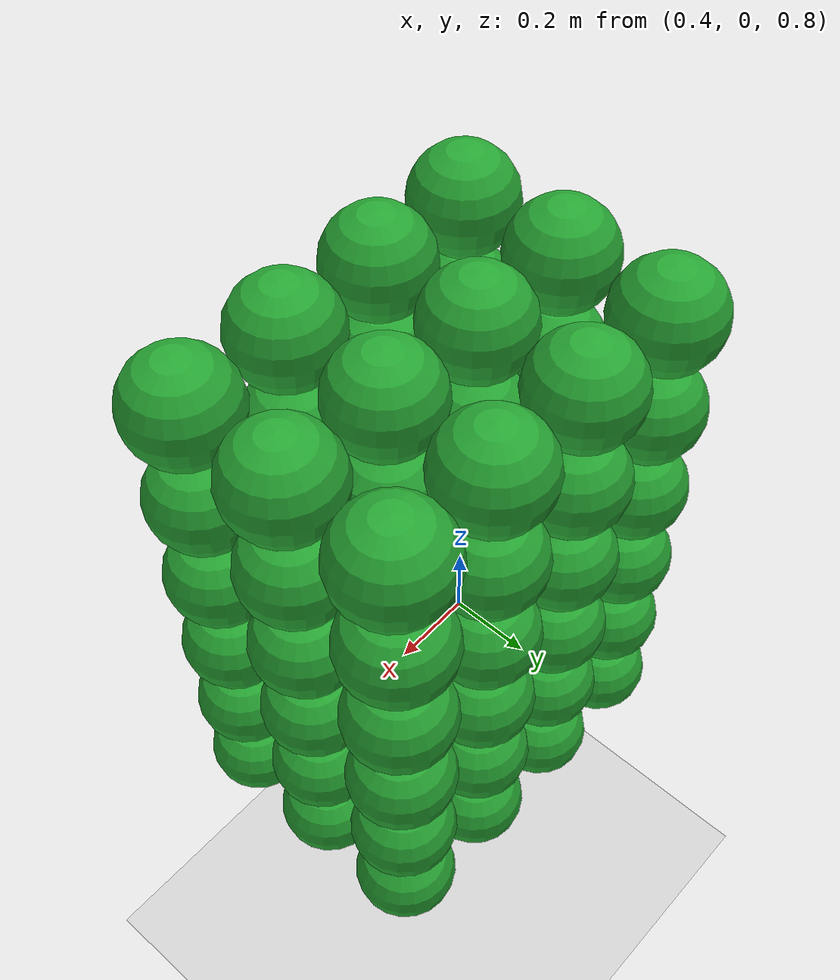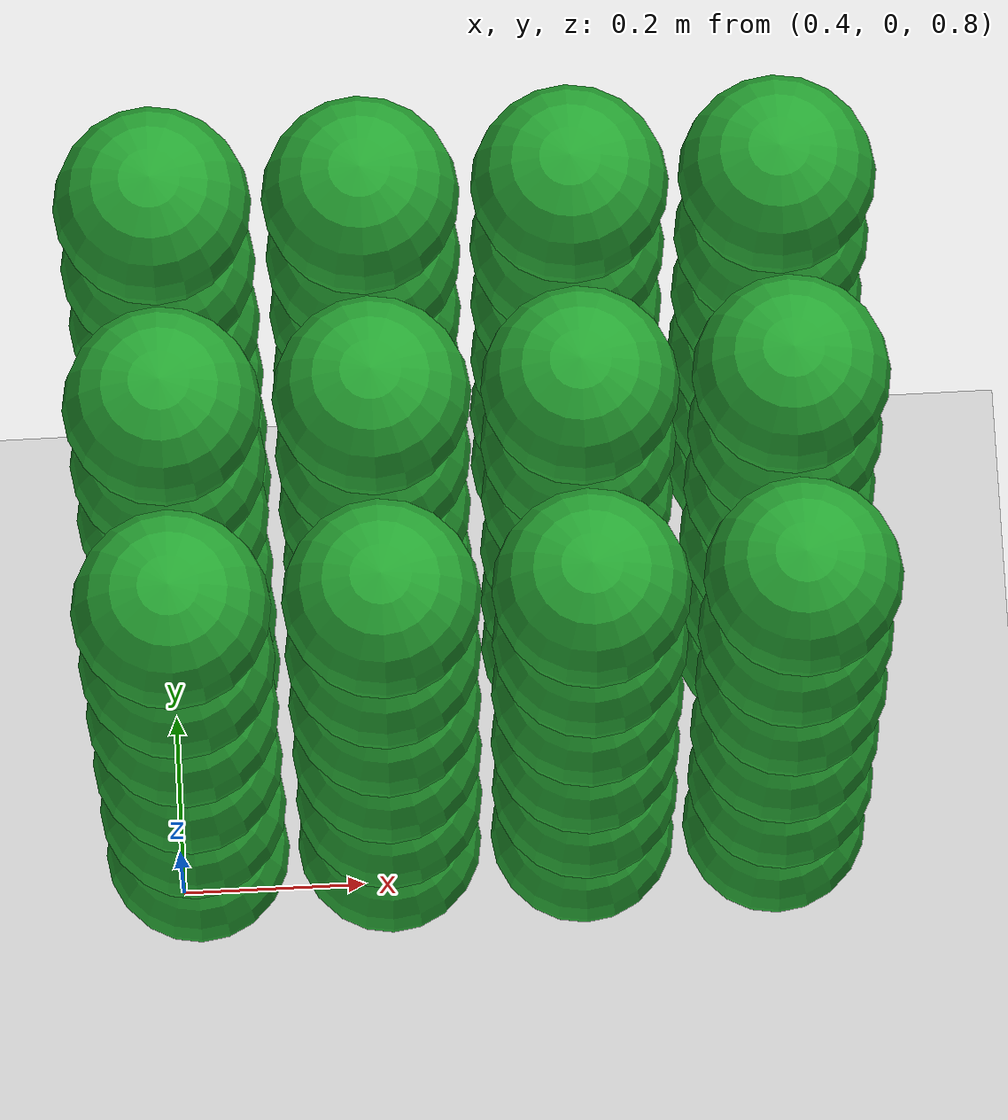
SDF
<sdf version="1.7">
 <world name="default">
  <model name="ground_plane">
   <static>1</static>
   <link name="link">
    <collision name="collision">
     <geometry><plane><normal>0 0 1</normal><size>100 100</size></plane></geometry>
     <surface>
      <contact><collide_bitmask>65535</collide_bitmask></contact>
      <friction><ode><mu>100</mu><mu2>50</mu2></ode></friction>
     </surface>
    </collision>
    <visual name="visual">
     <cast_shadows>0</cast_shadows>
     <geometry><plane><normal>0 0 1</normal><size>100 100</size></plane></geometry>
     <material>
      <script><uri>file://media/materials/scripts/gazebo.material</uri><name>Gazebo/Grey</name></script>
     </material>
    </visual>
   </link>
  </model>
  <model name="ball_72">
   <pose>0.419984 0.000000 1.000000 0 0 0</pose>
   <link name="link">
    <inertial><mass>10.000000</mass></inertial>
    <collision name="collision">
     <geometry><sphere><radius>0.100000</radius></sphere></geometry>
     <surface><friction><ode><mu>0</mu><mu2>0</mu2></ode></friction></surface>
    </collision>
    <visual name="visual">
     <geometry><sphere><radius>0.100000</radius></sphere></geometry>
     <material>
      <script><name>Gazebo/Green</name><uri>file://media/materials/scripts/gazebo.material</uri></script>
     </material>
    </visual>
   </link>
  </model>
  <model name="ball_73">
   <pose>0.420039 0.000000 1.210019 0 0 0</pose>
   <link name="link">
    <inertial><mass>10.000000</mass></inertial>
    <collision name="collision">
     <geometry><sphere><radius>0.100000</radius></sphere></geometry>
     <surface><friction><ode><mu>0</mu><mu2>0</mu2></ode></friction></surface>
    </collision>
    <visual name="visual">
     <geometry><sphere><radius>0.100000</radius></sphere></geometry>
     <material>
      <script><name>Gazebo/Green</name><uri>file://media/materials/scripts/gazebo.material</uri></script>
     </material>
    </visual>
   </link>
  </model>
  <model name="ball_74">
   <pose>0.419888 0.000000 1.419888 0 0 0</pose>
   <link name="link">
    <inertial><mass>10.000000</mass></inertial>
    <collision name="collision">
     <geometry><sphere><radius>0.100000</radius></sphere></geometry>
     <surface><friction><ode><mu>0</mu><mu2>0</mu2></ode></friction></surface>
    </collision>
    <visual name="visual">
     <geometry><sphere><radius>0.100000</radius></sphere></geometry>
     <material>
      <script><name>Gazebo/Green</name><uri>file://media/materials/scripts/gazebo.material</uri></script>
     </material>
    </visual>
   </link>
  </model>
  <model name="ball_75">
   <pose>0.420021 0.000000 1.630032 0 0 0</pose>
   <link name="link">
    <inertial><mass>10.000000</mass></inertial>
    <collision name="collision">
     <geometry><sphere><radius>0.100000</radius></sphere></geometry>
     <surface><friction><ode><mu>0</mu><mu2>0</mu2></ode></friction></surface>
    </collision>
    <visual name="visual">
     <geometry><sphere><radius>0.100000</radius></sphere></geometry>
     <material>
      <script><name>Gazebo/Green</name><uri>file://media/materials/scripts/gazebo.material</uri></script>
     </material>
    </visual>
   </link>
  </model>
  <model name="ball_76">
   <pose>0.419873 0.000000 1.839746 0 0 0</pose>
   <link name="link">
    <inertial><mass>10.000000</mass></inertial>
    <collision name="collision">
     <geometry><sphere><radius>0.100000</radius></sphere></geometry>
     <surface><friction><ode><mu>0</mu><mu2>0</mu2></ode></friction></surface>
    </collision>
    <visual name="visual">
     <geometry><sphere><radius>0.100000</radius></sphere></geometry>
     <material>
      <script><name>Gazebo/Green</name><uri>file://media/materials/scripts/gazebo.material</uri></script>
     </material>
    </visual>
   </link>
  </model>
  <model name="ball_77">
   <pose>0.419648 0.000000 2.049121 0 0 0</pose>
   <link name="link">
    <inertial><mass>10.000000</mass></inertial>
    <collision name="collision">
     <geometry><sphere><radius>0.100000</radius></sphere></geometry>
     <surface><friction><ode><mu>0</mu><mu2>0</mu2></ode></friction></surface>
    </collision>
    <visual name="visual">
     <geometry><sphere><radius>0.100000</radius></sphere></geometry>
     <material>
      <script><name>Gazebo/Green</name><uri>file://media/materials/scripts/gazebo.material</uri></script>
     </material>
    </visual>
   </link>
  </model>
  <model name="ball_78">
   <pose>0.419767 0.209884 1.000000 0 0 0</pose>
   <link name="link">
    <inertial><mass>10.000000</mass></inertial>
    <collision name="collision">
     <geometry><sphere><radius>0.100000</radius></sphere></geometry>
     <surface><friction><ode><mu>0</mu><mu2>0</mu2></ode></friction></surface>
    </collision>
    <visual name="visual">
     <geometry><sphere><radius>0.100000</radius></sphere></geometry>
     <material>
      <script><name>Gazebo/Green</name><uri>file://media/materials/scripts/gazebo.material</uri></script>
     </material>
    </visual>
   </link>
  </model>
  <model name="ball_79">
   <pose>0.419958 0.209979 1.209979 0 0 0</pose>
   <link name="link">
    <inertial><mass>10.000000</mass></inertial>
    <collision name="collision">
     <geometry><sphere><radius>0.100000</radius></sphere></geometry>
     <surface><friction><ode><mu>0</mu><mu2>0</mu2></ode></friction></surface>
    </collision>
    <visual name="visual">
     <geometry><sphere><radius>0.100000</radius></sphere></geometry>
     <material>
      <script><name>Gazebo/Green</name><uri>file://media/materials/scripts/gazebo.material</uri></script>
     </material>
    </visual>
   </link>
  </model>
  <model name="ball_80">
   <pose>0.420184 0.210092 1.420184 0 0 0</pose>
   <link name="link">
    <inertial><mass>10.000000</mass></inertial>
    <collision name="collision">
     <geometry><sphere><radius>0.100000</radius></sphere></geometry>
     <surface><friction><ode><mu>0</mu><mu2>0</mu2></ode></friction></surface>
    </collision>
    <visual name="visual">
     <geometry><sphere><radius>0.100000</radius></sphere></geometry>
     <material>
      <script><name>Gazebo/Green</name><uri>file://media/materials/scripts/gazebo.material</uri></script>
     </material>
    </visual>
   </link>
  </model>
  <model name="ball_81">
   <pose>0.419599 0.209799 1.629398 0 0 0</pose>
   <link name="link">
    <inertial><mass>10.000000</mass></inertial>
    <collision name="collision">
     <geometry><sphere><radius>0.100000</radius></sphere></geometry>
     <surface><friction><ode><mu>0</mu><mu2>0</mu2></ode></friction></surface>
    </collision>
    <visual name="visual">
     <geometry><sphere><radius>0.100000</radius></sphere></geometry>
     <material>
      <script><name>Gazebo/Green</name><uri>file://media/materials/scripts/gazebo.material</uri></script>
     </material>
    </visual>
   </link>
  </model>
  <model name="ball_82">
   <pose>0.420200 0.210100 1.840401 0 0 0</pose>
   <link name="link">
    <inertial><mass>10.000000</mass></inertial>
    <collision name="collision">
     <geometry><sphere><radius>0.100000</radius></sphere></geometry>
     <surface><friction><ode><mu>0</mu><mu2>0</mu2></ode></friction></surface>
    </collision>
    <visual name="visual">
     <geometry><sphere><radius>0.100000</radius></sphere></geometry>
     <material>
      <script><name>Gazebo/Green</name><uri>file://media/materials/scripts/gazebo.material</uri></script>
     </material>
    </visual>
   </link>
  </model>
  <model name="ball_83">
   <pose>0.420075 0.210037 2.050187 0 0 0</pose>
   <link name="link">
    <inertial><mass>10.000000</mass></inertial>
    <collision name="collision">
     <geometry><sphere><radius>0.100000</radius></sphere></geometry>
     <surface><friction><ode><mu>0</mu><mu2>0</mu2></ode></friction></surface>
    </collision>
    <visual name="visual">
     <geometry><sphere><radius>0.100000</radius></sphere></geometry>
     <material>
      <script><name>Gazebo/Green</name><uri>file://media/materials/scripts/gazebo.material</uri></script>
     </material>
    </visual>
   </link>
  </model>
  <model name="ball_84">
   <pose>0.419770 0.419770 1.000000 0 0 0</pose>
   <link name="link">
    <inertial><mass>10.000000</mass></inertial>
    <collision name="collision">
     <geometry><sphere><radius>0.100000</radius></sphere></geometry>
     <surface><friction><ode><mu>0</mu><mu2>0</mu2></ode></friction></surface>
    </collision>
    <visual name="visual">
     <geometry><sphere><radius>0.100000</radius></sphere></geometry>
     <material>
      <script><name>Gazebo/Green</name><uri>file://media/materials/scripts/gazebo.material</uri></script>
     </material>
    </visual>
   </link>
  </model>
  <model name="ball_85">
   <pose>0.419704 0.419704 1.209852 0 0 0</pose>
   <link name="link">
    <inertial><mass>10.000000</mass></inertial>
    <collision name="collision">
     <geometry><sphere><radius>0.100000</radius></sphere></geometry>
     <surface><friction><ode><mu>0</mu><mu2>0</mu2></ode></friction></surface>
    </collision>
    <visual name="visual">
     <geometry><sphere><radius>0.100000</radius></sphere></geometry>
     <material>
      <script><name>Gazebo/Green</name><uri>file://media/materials/scripts/gazebo.material</uri></script>
     </material>
    </visual>
   </link>
  </model>
  <model name="ball_86">
   <pose>0.419795 0.419795 1.419795 0 0 0</pose>
   <link name="link">
    <inertial><mass>10.000000</mass></inertial>
    <collision name="collision">
     <geometry><sphere><radius>0.100000</radius></sphere></geometry>
     <surface><friction><ode><mu>0</mu><mu2>0</mu2></ode></friction></surface>
    </collision>
    <visual name="visual">
     <geometry><sphere><radius>0.100000</radius></sphere></geometry>
     <material>
      <script><name>Gazebo/Green</name><uri>file://media/materials/scripts/gazebo.material</uri></script>
     </material>
    </visual>
   </link>
  </model>
  <model name="ball_87">
   <pose>0.420315 0.420315 1.630472 0 0 0</pose>
   <link name="link">
    <inertial><mass>10.000000</mass></inertial>
    <collision name="collision">
     <geometry><sphere><radius>0.100000</radius></sphere></geometry>
     <surface><friction><ode><mu>0</mu><mu2>0</mu2></ode></friction></surface>
    </collision>
    <visual name="visual">
     <geometry><sphere><radius>0.100000</radius></sphere></geometry>
     <material>
      <script><name>Gazebo/Green</name><uri>file://media/materials/scripts/gazebo.material</uri></script>
     </material>
    </visual>
   </link>
  </model>
  <model name="ball_88">
   <pose>0.419756 0.419756 1.839512 0 0 0</pose>
   <link name="link">
    <inertial><mass>10.000000</mass></inertial>
    <collision name="collision">
     <geometry><sphere><radius>0.100000</radius></sphere></geometry>
     <surface><friction><ode><mu>0</mu><mu2>0</mu2></ode></friction></surface>
    </collision>
    <visual name="visual">
     <geometry><sphere><radius>0.100000</radius></sphere></geometry>
     <material>
      <script><name>Gazebo/Green</name><uri>file://media/materials/scripts/gazebo.material</uri></script>
     </material>
    </visual>
   </link>
  </model>
  <model name="ball_89">
   <pose>0.419690 0.419690 2.049226 0 0 0</pose>
   <link name="link">
    <inertial><mass>10.000000</mass></inertial>
    <collision name="collision">
     <geometry><sphere><radius>0.100000</radius></sphere></geometry>
     <surface><friction><ode><mu>0</mu><mu2>0</mu2></ode></friction></surface>
    </collision>
    <visual name="visual">
     <geometry><sphere><radius>0.100000</radius></sphere></geometry>
     <material>
      <script><name>Gazebo/Green</name><uri>file://media/materials/scripts/gazebo.material</uri></script>
     </material>
    </visual>
   </link>
  </model>
  <model name="ball_108">
   <pose>0.629375 0.000000 1.000000 0 0 0</pose>
   <link name="link">
    <inertial><mass>10.000000</mass></inertial>
    <collision name="collision">
     <geometry><sphere><radius>0.100000</radius></sphere></geometry>
     <surface><friction><ode><mu>0</mu><mu2>0</mu2></ode></friction></surface>
    </collision>
    <visual name="visual">
     <geometry><sphere><radius>0.100000</radius></sphere></geometry>
     <material>
      <script><name>Gazebo/Green</name><uri>file://media/materials/scripts/gazebo.material</uri></script>
     </material>
    </visual>
   </link>
  </model>
  <model name="ball_109">
   <pose>0.630531 0.000000 1.210177 0 0 0</pose>
   <link name="link">
    <inertial><mass>10.000000</mass></inertial>
    <collision name="collision">
     <geometry><sphere><radius>0.100000</radius></sphere></geometry>
     <surface><friction><ode><mu>0</mu><mu2>0</mu2></ode></friction></surface>
    </collision>
    <visual name="visual">
     <geometry><sphere><radius>0.100000</radius></sphere></geometry>
     <material>
      <script><name>Gazebo/Green</name><uri>file://media/materials/scripts/gazebo.material</uri></script>
     </material>
    </visual>
   </link>
  </model>
  <model name="ball_110">
   <pose>0.630033 0.000000 1.420022 0 0 0</pose>
   <link name="link">
    <inertial><mass>10.000000</mass></inertial>
    <collision name="collision">
     <geometry><sphere><radius>0.100000</radius></sphere></geometry>
     <surface><friction><ode><mu>0</mu><mu2>0</mu2></ode></friction></surface>
    </collision>
    <visual name="visual">
     <geometry><sphere><radius>0.100000</radius></sphere></geometry>
     <material>
      <script><name>Gazebo/Green</name><uri>file://media/materials/scripts/gazebo.material</uri></script>
     </material>
    </visual>
   </link>
  </model>
  <model name="ball_111">
   <pose>0.629526 0.000000 1.629526 0 0 0</pose>
   <link name="link">
    <inertial><mass>10.000000</mass></inertial>
    <collision name="collision">
     <geometry><sphere><radius>0.100000</radius></sphere></geometry>
     <surface><friction><ode><mu>0</mu><mu2>0</mu2></ode></friction></surface>
    </collision>
    <visual name="visual">
     <geometry><sphere><radius>0.100000</radius></sphere></geometry>
     <material>
      <script><name>Gazebo/Green</name><uri>file://media/materials/scripts/gazebo.material</uri></script>
     </material>
    </visual>
   </link>
  </model>
  <model name="ball_112">
   <pose>0.629442 0.000000 1.839256 0 0 0</pose>
   <link name="link">
    <inertial><mass>10.000000</mass></inertial>
    <collision name="collision">
     <geometry><sphere><radius>0.100000</radius></sphere></geometry>
     <surface><friction><ode><mu>0</mu><mu2>0</mu2></ode></friction></surface>
    </collision>
    <visual name="visual">
     <geometry><sphere><radius>0.100000</radius></sphere></geometry>
     <material>
      <script><name>Gazebo/Green</name><uri>file://media/materials/scripts/gazebo.material</uri></script>
     </material>
    </visual>
   </link>
  </model>
  <model name="ball_113">
   <pose>0.629796 0.000000 2.049660 0 0 0</pose>
   <link name="link">
    <inertial><mass>10.000000</mass></inertial>
    <collision name="collision">
     <geometry><sphere><radius>0.100000</radius></sphere></geometry>
     <surface><friction><ode><mu>0</mu><mu2>0</mu2></ode></friction></surface>
    </collision>
    <visual name="visual">
     <geometry><sphere><radius>0.100000</radius></sphere></geometry>
     <material>
      <script><name>Gazebo/Green</name><uri>file://media/materials/scripts/gazebo.material</uri></script>
     </material>
    </visual>
   </link>
  </model>
  <model name="ball_114">
   <pose>0.630516 0.210172 1.000000 0 0 0</pose>
   <link name="link">
    <inertial><mass>10.000000</mass></inertial>
    <collision name="collision">
     <geometry><sphere><radius>0.100000</radius></sphere></geometry>
     <surface><friction><ode><mu>0</mu><mu2>0</mu2></ode></friction></surface>
    </collision>
    <visual name="visual">
     <geometry><sphere><radius>0.100000</radius></sphere></geometry>
     <material>
      <script><name>Gazebo/Green</name><uri>file://media/materials/scripts/gazebo.material</uri></script>
     </material>
    </visual>
   </link>
  </model>
  <model name="ball_115">
   <pose>0.630187 0.210062 1.210062 0 0 0</pose>
   <link name="link">
    <inertial><mass>10.000000</mass></inertial>
    <collision name="collision">
     <geometry><sphere><radius>0.100000</radius></sphere></geometry>
     <surface><friction><ode><mu>0</mu><mu2>0</mu2></ode></friction></surface>
    </collision>
    <visual name="visual">
     <geometry><sphere><radius>0.100000</radius></sphere></geometry>
     <material>
      <script><name>Gazebo/Green</name><uri>file://media/materials/scripts/gazebo.material</uri></script>
     </material>
    </visual>
   </link>
  </model>
  <model name="ball_116">
   <pose>0.630558 0.210186 1.420372 0 0 0</pose>
   <link name="link">
    <inertial><mass>10.000000</mass></inertial>
    <collision name="collision">
     <geometry><sphere><radius>0.100000</radius></sphere></geometry>
     <surface><friction><ode><mu>0</mu><mu2>0</mu2></ode></friction></surface>
    </collision>
    <visual name="visual">
     <geometry><sphere><radius>0.100000</radius></sphere></geometry>
     <material>
      <script><name>Gazebo/Green</name><uri>file://media/materials/scripts/gazebo.material</uri></script>
     </material>
    </visual>
   </link>
  </model>
  <model name="ball_117">
   <pose>0.629524 0.209841 1.629524 0 0 0</pose>
   <link name="link">
    <inertial><mass>10.000000</mass></inertial>
    <collision name="collision">
     <geometry><sphere><radius>0.100000</radius></sphere></geometry>
     <surface><friction><ode><mu>0</mu><mu2>0</mu2></ode></friction></surface>
    </collision>
    <visual name="visual">
     <geometry><sphere><radius>0.100000</radius></sphere></geometry>
     <material>
      <script><name>Gazebo/Green</name><uri>file://media/materials/scripts/gazebo.material</uri></script>
     </material>
    </visual>
   </link>
  </model>
  <model name="ball_118">
   <pose>0.629779 0.209926 1.839706 0 0 0</pose>
   <link name="link">
    <inertial><mass>10.000000</mass></inertial>
    <collision name="collision">
     <geometry><sphere><radius>0.100000</radius></sphere></geometry>
     <surface><friction><ode><mu>0</mu><mu2>0</mu2></ode></friction></surface>
    </collision>
    <visual name="visual">
     <geometry><sphere><radius>0.100000</radius></sphere></geometry>
     <material>
      <script><name>Gazebo/Green</name><uri>file://media/materials/scripts/gazebo.material</uri></script>
     </material>
    </visual>
   </link>
  </model>
  <model name="ball_119">
   <pose>0.630296 0.210099 2.050494 0 0 0</pose>
   <link name="link">
    <inertial><mass>10.000000</mass></inertial>
    <collision name="collision">
     <geometry><sphere><radius>0.100000</radius></sphere></geometry>
     <surface><friction><ode><mu>0</mu><mu2>0</mu2></ode></friction></surface>
    </collision>
    <visual name="visual">
     <geometry><sphere><radius>0.100000</radius></sphere></geometry>
     <material>
      <script><name>Gazebo/Green</name><uri>file://media/materials/scripts/gazebo.material</uri></script>
     </material>
    </visual>
   </link>
  </model>
  <model name="ball_120">
   <pose>0.629573 0.419715 1.000000 0 0 0</pose>
   <link name="link">
    <inertial><mass>10.000000</mass></inertial>
    <collision name="collision">
     <geometry><sphere><radius>0.100000</radius></sphere></geometry>
     <surface><friction><ode><mu>0</mu><mu2>0</mu2></ode></friction></surface>
    </collision>
    <visual name="visual">
     <geometry><sphere><radius>0.100000</radius></sphere></geometry>
     <material>
      <script><name>Gazebo/Green</name><uri>file://media/materials/scripts/gazebo.material</uri></script>
     </material>
    </visual>
   </link>
  </model>
  <model name="ball_121">
   <pose>0.630297 0.420198 1.210099 0 0 0</pose>
   <link name="link">
    <inertial><mass>10.000000</mass></inertial>
    <collision name="collision">
     <geometry><sphere><radius>0.100000</radius></sphere></geometry>
     <surface><friction><ode><mu>0</mu><mu2>0</mu2></ode></friction></surface>
    </collision>
    <visual name="visual">
     <geometry><sphere><radius>0.100000</radius></sphere></geometry>
     <material>
      <script><name>Gazebo/Green</name><uri>file://media/materials/scripts/gazebo.material</uri></script>
     </material>
    </visual>
   </link>
  </model>
  <model name="ball_122">
   <pose>0.630196 0.420131 1.420131 0 0 0</pose>
   <link name="link">
    <inertial><mass>10.000000</mass></inertial>
    <collision name="collision">
     <geometry><sphere><radius>0.100000</radius></sphere></geometry>
     <surface><friction><ode><mu>0</mu><mu2>0</mu2></ode></friction></surface>
    </collision>
    <visual name="visual">
     <geometry><sphere><radius>0.100000</radius></sphere></geometry>
     <material>
      <script><name>Gazebo/Green</name><uri>file://media/materials/scripts/gazebo.material</uri></script>
     </material>
    </visual>
   </link>
  </model>
  <model name="ball_123">
   <pose>0.630137 0.420092 1.630137 0 0 0</pose>
   <link name="link">
    <inertial><mass>10.000000</mass></inertial>
    <collision name="collision">
     <geometry><sphere><radius>0.100000</radius></sphere></geometry>
     <surface><friction><ode><mu>0</mu><mu2>0</mu2></ode></friction></surface>
    </collision>
    <visual name="visual">
     <geometry><sphere><radius>0.100000</radius></sphere></geometry>
     <material>
      <script><name>Gazebo/Green</name><uri>file://media/materials/scripts/gazebo.material</uri></script>
     </material>
    </visual>
   </link>
  </model>
  <model name="ball_124">
   <pose>0.630186 0.420124 1.840248 0 0 0</pose>
   <link name="link">
    <inertial><mass>10.000000</mass></inertial>
    <collision name="collision">
     <geometry><sphere><radius>0.100000</radius></sphere></geometry>
     <surface><friction><ode><mu>0</mu><mu2>0</mu2></ode></friction></surface>
    </collision>
    <visual name="visual">
     <geometry><sphere><radius>0.100000</radius></sphere></geometry>
     <material>
      <script><name>Gazebo/Green</name><uri>file://media/materials/scripts/gazebo.material</uri></script>
     </material>
    </visual>
   </link>
  </model>
  <model name="ball_125">
   <pose>0.629489 0.419659 2.049148 0 0 0</pose>
   <link name="link">
    <inertial><mass>10.000000</mass></inertial>
    <collision name="collision">
     <geometry><sphere><radius>0.100000</radius></sphere></geometry>
     <surface><friction><ode><mu>0</mu><mu2>0</mu2></ode></friction></surface>
    </collision>
    <visual name="visual">
     <geometry><sphere><radius>0.100000</radius></sphere></geometry>
     <material>
      <script><name>Gazebo/Green</name><uri>file://media/materials/scripts/gazebo.material</uri></script>
     </material>
    </visual>
   </link>
  </model>
  <model name="ball_144">
   <pose>0.839947 0.000000 1.000000 0 0 0</pose>
   <link name="link">
    <inertial><mass>10.000000</mass></inertial>
    <collision name="collision">
     <geometry><sphere><radius>0.100000</radius></sphere></geometry>
     <surface><friction><ode><mu>0</mu><mu2>0</mu2></ode></friction></surface>
    </collision>
    <visual name="visual">
     <geometry><sphere><radius>0.100000</radius></sphere></geometry>
     <material>
      <script><name>Gazebo/Green</name><uri>file://media/materials/scripts/gazebo.material</uri></script>
     </material>
    </visual>
   </link>
  </model>
  <model name="ball_145">
   <pose>0.840780 0.000000 1.210195 0 0 0</pose>
   <link name="link">
    <inertial><mass>10.000000</mass></inertial>
    <collision name="collision">
     <geometry><sphere><radius>0.100000</radius></sphere></geometry>
     <surface><friction><ode><mu>0</mu><mu2>0</mu2></ode></friction></surface>
    </collision>
    <visual name="visual">
     <geometry><sphere><radius>0.100000</radius></sphere></geometry>
     <material>
      <script><name>Gazebo/Green</name><uri>file://media/materials/scripts/gazebo.material</uri></script>
     </material>
    </visual>
   </link>
  </model>
  <model name="ball_146">
   <pose>0.839278 0.000000 1.419639 0 0 0</pose>
   <link name="link">
    <inertial><mass>10.000000</mass></inertial>
    <collision name="collision">
     <geometry><sphere><radius>0.100000</radius></sphere></geometry>
     <surface><friction><ode><mu>0</mu><mu2>0</mu2></ode></friction></surface>
    </collision>
    <visual name="visual">
     <geometry><sphere><radius>0.100000</radius></sphere></geometry>
     <material>
      <script><name>Gazebo/Green</name><uri>file://media/materials/scripts/gazebo.material</uri></script>
     </material>
    </visual>
   </link>
  </model>
  <model name="ball_147">
   <pose>0.839510 0.000000 1.629633 0 0 0</pose>
   <link name="link">
    <inertial><mass>10.000000</mass></inertial>
    <collision name="collision">
     <geometry><sphere><radius>0.100000</radius></sphere></geometry>
     <surface><friction><ode><mu>0</mu><mu2>0</mu2></ode></friction></surface>
    </collision>
    <visual name="visual">
     <geometry><sphere><radius>0.100000</radius></sphere></geometry>
     <material>
      <script><name>Gazebo/Green</name><uri>file://media/materials/scripts/gazebo.material</uri></script>
     </material>
    </visual>
   </link>
  </model>
  <model name="ball_148">
   <pose>0.840021 0.000000 1.840021 0 0 0</pose>
   <link name="link">
    <inertial><mass>10.000000</mass></inertial>
    <collision name="collision">
     <geometry><sphere><radius>0.100000</radius></sphere></geometry>
     <surface><friction><ode><mu>0</mu><mu2>0</mu2></ode></friction></surface>
    </collision>
    <visual name="visual">
     <geometry><sphere><radius>0.100000</radius></sphere></geometry>
     <material>
      <script><name>Gazebo/Green</name><uri>file://media/materials/scripts/gazebo.material</uri></script>
     </material>
    </visual>
   </link>
  </model>
  <model name="ball_149">
   <pose>0.839186 0.000000 2.048983 0 0 0</pose>
   <link name="link">
    <inertial><mass>10.000000</mass></inertial>
    <collision name="collision">
     <geometry><sphere><radius>0.100000</radius></sphere></geometry>
     <surface><friction><ode><mu>0</mu><mu2>0</mu2></ode></friction></surface>
    </collision>
    <visual name="visual">
     <geometry><sphere><radius>0.100000</radius></sphere></geometry>
     <material>
      <script><name>Gazebo/Green</name><uri>file://media/materials/scripts/gazebo.material</uri></script>
     </material>
    </visual>
   </link>
  </model>
  <model name="ball_150">
   <pose>0.840802 0.210200 1.000000 0 0 0</pose>
   <link name="link">
    <inertial><mass>10.000000</mass></inertial>
    <collision name="collision">
     <geometry><sphere><radius>0.100000</radius></sphere></geometry>
     <surface><friction><ode><mu>0</mu><mu2>0</mu2></ode></friction></surface>
    </collision>
    <visual name="visual">
     <geometry><sphere><radius>0.100000</radius></sphere></geometry>
     <material>
      <script><name>Gazebo/Green</name><uri>file://media/materials/scripts/gazebo.material</uri></script>
     </material>
    </visual>
   </link>
  </model>
  <model name="ball_151">
   <pose>0.839760 0.209940 1.209940 0 0 0</pose>
   <link name="link">
    <inertial><mass>10.000000</mass></inertial>
    <collision name="collision">
     <geometry><sphere><radius>0.100000</radius></sphere></geometry>
     <surface><friction><ode><mu>0</mu><mu2>0</mu2></ode></friction></surface>
    </collision>
    <visual name="visual">
     <geometry><sphere><radius>0.100000</radius></sphere></geometry>
     <material>
      <script><name>Gazebo/Green</name><uri>file://media/materials/scripts/gazebo.material</uri></script>
     </material>
    </visual>
   </link>
  </model>
  <model name="ball_152">
   <pose>0.839415 0.209854 1.419708 0 0 0</pose>
   <link name="link">
    <inertial><mass>10.000000</mass></inertial>
    <collision name="collision">
     <geometry><sphere><radius>0.100000</radius></sphere></geometry>
     <surface><friction><ode><mu>0</mu><mu2>0</mu2></ode></friction></surface>
    </collision>
    <visual name="visual">
     <geometry><sphere><radius>0.100000</radius></sphere></geometry>
     <material>
      <script><name>Gazebo/Green</name><uri>file://media/materials/scripts/gazebo.material</uri></script>
     </material>
    </visual>
   </link>
  </model>
  <model name="ball_153">
   <pose>0.840165 0.210041 1.630123 0 0 0</pose>
   <link name="link">
    <inertial><mass>10.000000</mass></inertial>
    <collision name="collision">
     <geometry><sphere><radius>0.100000</radius></sphere></geometry>
     <surface><friction><ode><mu>0</mu><mu2>0</mu2></ode></friction></surface>
    </collision>
    <visual name="visual">
     <geometry><sphere><radius>0.100000</radius></sphere></geometry>
     <material>
      <script><name>Gazebo/Green</name><uri>file://media/materials/scripts/gazebo.material</uri></script>
     </material>
    </visual>
   </link>
  </model>
  <model name="ball_154">
   <pose>0.839272 0.209818 1.839272 0 0 0</pose>
   <link name="link">
    <inertial><mass>10.000000</mass></inertial>
    <collision name="collision">
     <geometry><sphere><radius>0.100000</radius></sphere></geometry>
     <surface><friction><ode><mu>0</mu><mu2>0</mu2></ode></friction></surface>
    </collision>
    <visual name="visual">
     <geometry><sphere><radius>0.100000</radius></sphere></geometry>
     <material>
      <script><name>Gazebo/Green</name><uri>file://media/materials/scripts/gazebo.material</uri></script>
     </material>
    </visual>
   </link>
  </model>
  <model name="ball_155">
   <pose>0.839205 0.209801 2.049007 0 0 0</pose>
   <link name="link">
    <inertial><mass>10.000000</mass></inertial>
    <collision name="collision">
     <geometry><sphere><radius>0.100000</radius></sphere></geometry>
     <surface><friction><ode><mu>0</mu><mu2>0</mu2></ode></friction></surface>
    </collision>
    <visual name="visual">
     <geometry><sphere><radius>0.100000</radius></sphere></geometry>
     <material>
      <script><name>Gazebo/Green</name><uri>file://media/materials/scripts/gazebo.material</uri></script>
     </material>
    </visual>
   </link>
  </model>
  <model name="ball_156">
   <pose>0.840464 0.420232 1.000000 0 0 0</pose>
   <link name="link">
    <inertial><mass>10.000000</mass></inertial>
    <collision name="collision">
     <geometry><sphere><radius>0.100000</radius></sphere></geometry>
     <surface><friction><ode><mu>0</mu><mu2>0</mu2></ode></friction></surface>
    </collision>
    <visual name="visual">
     <geometry><sphere><radius>0.100000</radius></sphere></geometry>
     <material>
      <script><name>Gazebo/Green</name><uri>file://media/materials/scripts/gazebo.material</uri></script>
     </material>
    </visual>
   </link>
  </model>
  <model name="ball_157">
   <pose>0.839382 0.419691 1.209846 0 0 0</pose>
   <link name="link">
    <inertial><mass>10.000000</mass></inertial>
    <collision name="collision">
     <geometry><sphere><radius>0.100000</radius></sphere></geometry>
     <surface><friction><ode><mu>0</mu><mu2>0</mu2></ode></friction></surface>
    </collision>
    <visual name="visual">
     <geometry><sphere><radius>0.100000</radius></sphere></geometry>
     <material>
      <script><name>Gazebo/Green</name><uri>file://media/materials/scripts/gazebo.material</uri></script>
     </material>
    </visual>
   </link>
  </model>
  <model name="ball_158">
   <pose>0.840260 0.420130 1.420130 0 0 0</pose>
   <link name="link">
    <inertial><mass>10.000000</mass></inertial>
    <collision name="collision">
     <geometry><sphere><radius>0.100000</radius></sphere></geometry>
     <surface><friction><ode><mu>0</mu><mu2>0</mu2></ode></friction></surface>
    </collision>
    <visual name="visual">
     <geometry><sphere><radius>0.100000</radius></sphere></geometry>
     <material>
      <script><name>Gazebo/Green</name><uri>file://media/materials/scripts/gazebo.material</uri></script>
     </material>
    </visual>
   </link>
  </model>
  <model name="ball_159">
   <pose>0.840226 0.420113 1.630169 0 0 0</pose>
   <link name="link">
    <inertial><mass>10.000000</mass></inertial>
    <collision name="collision">
     <geometry><sphere><radius>0.100000</radius></sphere></geometry>
     <surface><friction><ode><mu>0</mu><mu2>0</mu2></ode></friction></surface>
    </collision>
    <visual name="visual">
     <geometry><sphere><radius>0.100000</radius></sphere></geometry>
     <material>
      <script><name>Gazebo/Green</name><uri>file://media/materials/scripts/gazebo.material</uri></script>
     </material>
    </visual>
   </link>
  </model>
  <model name="ball_160">
   <pose>0.839414 0.419707 1.839414 0 0 0</pose>
   <link name="link">
    <inertial><mass>10.000000</mass></inertial>
    <collision name="collision">
     <geometry><sphere><radius>0.100000</radius></sphere></geometry>
     <surface><friction><ode><mu>0</mu><mu2>0</mu2></ode></friction></surface>
    </collision>
    <visual name="visual">
     <geometry><sphere><radius>0.100000</radius></sphere></geometry>
     <material>
      <script><name>Gazebo/Green</name><uri>file://media/materials/scripts/gazebo.material</uri></script>
     </material>
    </visual>
   </link>
  </model>
  <model name="ball_161">
   <pose>0.840216 0.420108 2.050271 0 0 0</pose>
   <link name="link">
    <inertial><mass>10.000000</mass></inertial>
    <collision name="collision">
     <geometry><sphere><radius>0.100000</radius></sphere></geometry>
     <surface><friction><ode><mu>0</mu><mu2>0</mu2></ode></friction></surface>
    </collision>
    <visual name="visual">
     <geometry><sphere><radius>0.100000</radius></sphere></geometry>
     <material>
      <script><name>Gazebo/Green</name><uri>file://media/materials/scripts/gazebo.material</uri></script>
     </material>
    </visual>
   </link>
  </model>
  <model name="ball_180">
   <pose>1.049686 0.000000 1.000000 0 0 0</pose>
   <link name="link">
    <inertial><mass>10.000000</mass></inertial>
    <collision name="collision">
     <geometry><sphere><radius>0.100000</radius></sphere></geometry>
     <surface><friction><ode><mu>0</mu><mu2>0</mu2></ode></friction></surface>
    </collision>
    <visual name="visual">
     <geometry><sphere><radius>0.100000</radius></sphere></geometry>
     <material>
      <script><name>Gazebo/Green</name><uri>file://media/materials/scripts/gazebo.material</uri></script>
     </material>
    </visual>
   </link>
  </model>
  <model name="ball_181">
   <pose>1.050974 0.000000 1.210195 0 0 0</pose>
   <link name="link">
    <inertial><mass>10.000000</mass></inertial>
    <collision name="collision">
     <geometry><sphere><radius>0.100000</radius></sphere></geometry>
     <surface><friction><ode><mu>0</mu><mu2>0</mu2></ode></friction></surface>
    </collision>
    <visual name="visual">
     <geometry><sphere><radius>0.100000</radius></sphere></geometry>
     <material>
      <script><name>Gazebo/Green</name><uri>file://media/materials/scripts/gazebo.material</uri></script>
     </material>
    </visual>
   </link>
  </model>
  <model name="ball_182">
   <pose>1.049706 0.000000 1.419882 0 0 0</pose>
   <link name="link">
    <inertial><mass>10.000000</mass></inertial>
    <collision name="collision">
     <geometry><sphere><radius>0.100000</radius></sphere></geometry>
     <surface><friction><ode><mu>0</mu><mu2>0</mu2></ode></friction></surface>
    </collision>
    <visual name="visual">
     <geometry><sphere><radius>0.100000</radius></sphere></geometry>
     <material>
      <script><name>Gazebo/Green</name><uri>file://media/materials/scripts/gazebo.material</uri></script>
     </material>
    </visual>
   </link>
  </model>
  <model name="ball_183">
   <pose>1.050730 0.000000 1.630438 0 0 0</pose>
   <link name="link">
    <inertial><mass>10.000000</mass></inertial>
    <collision name="collision">
     <geometry><sphere><radius>0.100000</radius></sphere></geometry>
     <surface><friction><ode><mu>0</mu><mu2>0</mu2></ode></friction></surface>
    </collision>
    <visual name="visual">
     <geometry><sphere><radius>0.100000</radius></sphere></geometry>
     <material>
      <script><name>Gazebo/Green</name><uri>file://media/materials/scripts/gazebo.material</uri></script>
     </material>
    </visual>
   </link>
  </model>
  <model name="ball_184">
   <pose>1.049166 0.000000 1.839333 0 0 0</pose>
   <link name="link">
    <inertial><mass>10.000000</mass></inertial>
    <collision name="collision">
     <geometry><sphere><radius>0.100000</radius></sphere></geometry>
     <surface><friction><ode><mu>0</mu><mu2>0</mu2></ode></friction></surface>
    </collision>
    <visual name="visual">
     <geometry><sphere><radius>0.100000</radius></sphere></geometry>
     <material>
      <script><name>Gazebo/Green</name><uri>file://media/materials/scripts/gazebo.material</uri></script>
     </material>
    </visual>
   </link>
  </model>
  <model name="ball_185">
   <pose>1.050778 0.000000 2.050778 0 0 0</pose>
   <link name="link">
    <inertial><mass>10.000000</mass></inertial>
    <collision name="collision">
     <geometry><sphere><radius>0.100000</radius></sphere></geometry>
     <surface><friction><ode><mu>0</mu><mu2>0</mu2></ode></friction></surface>
    </collision>
    <visual name="visual">
     <geometry><sphere><radius>0.100000</radius></sphere></geometry>
     <material>
      <script><name>Gazebo/Green</name><uri>file://media/materials/scripts/gazebo.material</uri></script>
     </material>
    </visual>
   </link>
  </model>
  <model name="ball_186">
   <pose>1.049321 0.209864 1.000000 0 0 0</pose>
   <link name="link">
    <inertial><mass>10.000000</mass></inertial>
    <collision name="collision">
     <geometry><sphere><radius>0.100000</radius></sphere></geometry>
     <surface><friction><ode><mu>0</mu><mu2>0</mu2></ode></friction></surface>
    </collision>
    <visual name="visual">
     <geometry><sphere><radius>0.100000</radius></sphere></geometry>
     <material>
      <script><name>Gazebo/Green</name><uri>file://media/materials/scripts/gazebo.material</uri></script>
     </material>
    </visual>
   </link>
  </model>
  <model name="ball_187">
   <pose>1.050088 0.210018 1.210018 0 0 0</pose>
   <link name="link">
    <inertial><mass>10.000000</mass></inertial>
    <collision name="collision">
     <geometry><sphere><radius>0.100000</radius></sphere></geometry>
     <surface><friction><ode><mu>0</mu><mu2>0</mu2></ode></friction></surface>
    </collision>
    <visual name="visual">
     <geometry><sphere><radius>0.100000</radius></sphere></geometry>
     <material>
      <script><name>Gazebo/Green</name><uri>file://media/materials/scripts/gazebo.material</uri></script>
     </material>
    </visual>
   </link>
  </model>
  <model name="ball_188">
   <pose>1.050558 0.210112 1.420223 0 0 0</pose>
   <link name="link">
    <inertial><mass>10.000000</mass></inertial>
    <collision name="collision">
     <geometry><sphere><radius>0.100000</radius></sphere></geometry>
     <surface><friction><ode><mu>0</mu><mu2>0</mu2></ode></friction></surface>
    </collision>
    <visual name="visual">
     <geometry><sphere><radius>0.100000</radius></sphere></geometry>
     <material>
      <script><name>Gazebo/Green</name><uri>file://media/materials/scripts/gazebo.material</uri></script>
     </material>
    </visual>
   </link>
  </model>
  <model name="ball_189">
   <pose>1.050945 0.210189 1.630567 0 0 0</pose>
   <link name="link">
    <inertial><mass>10.000000</mass></inertial>
    <collision name="collision">
     <geometry><sphere><radius>0.100000</radius></sphere></geometry>
     <surface><friction><ode><mu>0</mu><mu2>0</mu2></ode></friction></surface>
    </collision>
    <visual name="visual">
     <geometry><sphere><radius>0.100000</radius></sphere></geometry>
     <material>
      <script><name>Gazebo/Green</name><uri>file://media/materials/scripts/gazebo.material</uri></script>
     </material>
    </visual>
   </link>
  </model>
  <model name="ball_190">
   <pose>1.050838 0.210168 1.840671 0 0 0</pose>
   <link name="link">
    <inertial><mass>10.000000</mass></inertial>
    <collision name="collision">
     <geometry><sphere><radius>0.100000</radius></sphere></geometry>
     <surface><friction><ode><mu>0</mu><mu2>0</mu2></ode></friction></surface>
    </collision>
    <visual name="visual">
     <geometry><sphere><radius>0.100000</radius></sphere></geometry>
     <material>
      <script><name>Gazebo/Green</name><uri>file://media/materials/scripts/gazebo.material</uri></script>
     </material>
    </visual>
   </link>
  </model>
  <model name="ball_191">
   <pose>1.051010 0.210202 2.051010 0 0 0</pose>
   <link name="link">
    <inertial><mass>10.000000</mass></inertial>
    <collision name="collision">
     <geometry><sphere><radius>0.100000</radius></sphere></geometry>
     <surface><friction><ode><mu>0</mu><mu2>0</mu2></ode></friction></surface>
    </collision>
    <visual name="visual">
     <geometry><sphere><radius>0.100000</radius></sphere></geometry>
     <material>
      <script><name>Gazebo/Green</name><uri>file://media/materials/scripts/gazebo.material</uri></script>
     </material>
    </visual>
   </link>
  </model>
  <model name="ball_192">
   <pose>1.049613 0.419845 1.000000 0 0 0</pose>
   <link name="link">
    <inertial><mass>10.000000</mass></inertial>
    <collision name="collision">
     <geometry><sphere><radius>0.100000</radius></sphere></geometry>
     <surface><friction><ode><mu>0</mu><mu2>0</mu2></ode></friction></surface>
    </collision>
    <visual name="visual">
     <geometry><sphere><radius>0.100000</radius></sphere></geometry>
     <material>
      <script><name>Gazebo/Green</name><uri>file://media/materials/scripts/gazebo.material</uri></script>
     </material>
    </visual>
   </link>
  </model>
  <model name="ball_193">
   <pose>1.050058 0.420023 1.210012 0 0 0</pose>
   <link name="link">
    <inertial><mass>10.000000</mass></inertial>
    <collision name="collision">
     <geometry><sphere><radius>0.100000</radius></sphere></geometry>
     <surface><friction><ode><mu>0</mu><mu2>0</mu2></ode></friction></surface>
    </collision>
    <visual name="visual">
     <geometry><sphere><radius>0.100000</radius></sphere></geometry>
     <material>
      <script><name>Gazebo/Green</name><uri>file://media/materials/scripts/gazebo.material</uri></script>
     </material>
    </visual>
   </link>
  </model>
  <model name="ball_194">
   <pose>1.050076 0.420030 1.420030 0 0 0</pose>
   <link name="link">
    <inertial><mass>10.000000</mass></inertial>
    <collision name="collision">
     <geometry><sphere><radius>0.100000</radius></sphere></geometry>
     <surface><friction><ode><mu>0</mu><mu2>0</mu2></ode></friction></surface>
    </collision>
    <visual name="visual">
     <geometry><sphere><radius>0.100000</radius></sphere></geometry>
     <material>
      <script><name>Gazebo/Green</name><uri>file://media/materials/scripts/gazebo.material</uri></script>
     </material>
    </visual>
   </link>
  </model>
  <model name="ball_195">
   <pose>1.049905 0.419962 1.629943 0 0 0</pose>
   <link name="link">
    <inertial><mass>10.000000</mass></inertial>
    <collision name="collision">
     <geometry><sphere><radius>0.100000</radius></sphere></geometry>
     <surface><friction><ode><mu>0</mu><mu2>0</mu2></ode></friction></surface>
    </collision>
    <visual name="visual">
     <geometry><sphere><radius>0.100000</radius></sphere></geometry>
     <material>
      <script><name>Gazebo/Green</name><uri>file://media/materials/scripts/gazebo.material</uri></script>
     </material>
    </visual>
   </link>
  </model>
  <model name="ball_196">
   <pose>1.049067 0.419627 1.839254 0 0 0</pose>
   <link name="link">
    <inertial><mass>10.000000</mass></inertial>
    <collision name="collision">
     <geometry><sphere><radius>0.100000</radius></sphere></geometry>
     <surface><friction><ode><mu>0</mu><mu2>0</mu2></ode></friction></surface>
    </collision>
    <visual name="visual">
     <geometry><sphere><radius>0.100000</radius></sphere></geometry>
     <material>
      <script><name>Gazebo/Green</name><uri>file://media/materials/scripts/gazebo.material</uri></script>
     </material>
    </visual>
   </link>
  </model>
  <model name="ball_197">
   <pose>1.049179 0.419672 2.049179 0 0 0</pose>
   <link name="link">
    <inertial><mass>10.000000</mass></inertial>
    <collision name="collision">
     <geometry><sphere><radius>0.100000</radius></sphere></geometry>
     <surface><friction><ode><mu>0</mu><mu2>0</mu2></ode></friction></surface>
    </collision>
    <visual name="visual">
     <geometry><sphere><radius>0.100000</radius></sphere></geometry>
     <material>
      <script><name>Gazebo/Green</name><uri>file://media/materials/scripts/gazebo.material</uri></script>
     </material>
    </visual>
   </link>
  </model>
 </world>
</sdf>
